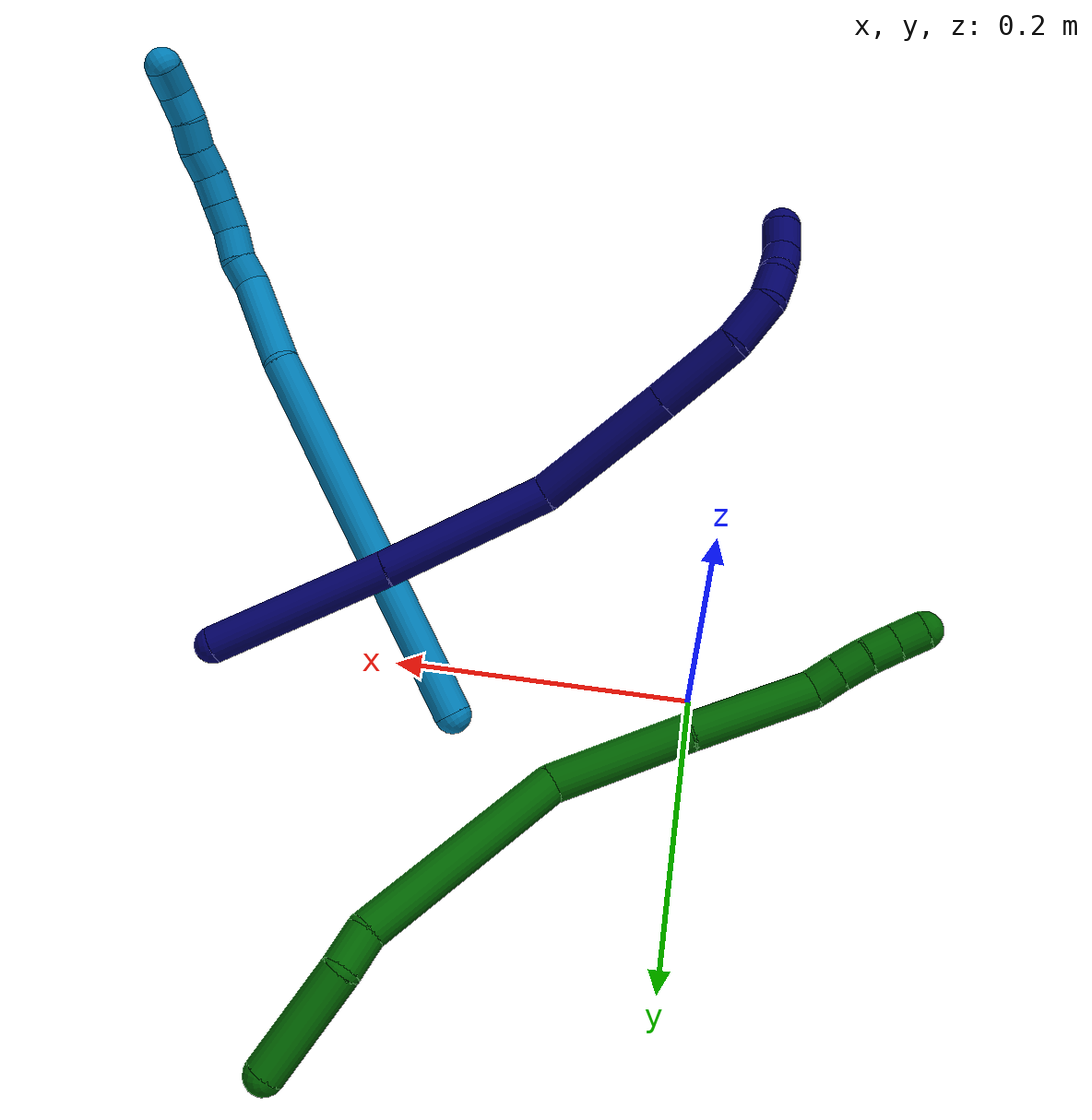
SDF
<sdf version="1.7">
 <world name="default">
  <model name="6">
   <static>0</static>
   <link name="6">
    <collision name="collision-cylinder-e_1_1_4">
     <pose>-0.020432 -0.028267 0.007934 1.29716 -0.608004 -0.466915</pose>
     <geometry><cylinder><radius>0.0125</radius><length>0.071538</length></cylinder></geometry>
     <surface>
      <friction><ode><mu>1.16</mu><mu2>1.16</mu2><slip1>0</slip1><slip2>0</slip2></ode></friction>
      <contact><ode><kp>1e+06</kp><kd>1</kd><max_vel>0</max_vel><min_depth>0.001</min_depth></ode></contact>
     </surface>
    </collision>
    <visual name="visual-cylinder-e_1_1_4">
     <pose>-0.020432 -0.028267 0.007934 1.29716 -0.608004 -0.466915</pose>
     <geometry><cylinder><radius>0.0125</radius><length>0.071538</length></cylinder></geometry>
     <material><ambient>0 0.392157 0.003922 1</ambient></material>
    </visual>
    <collision name="collision-cylinder-e_2_4_5">
     <pose>-0.049795 -0.065214 0.014161 1.76488 -0.79008 -0.938298</pose>
     <geometry><cylinder><radius>0.0125</radius><length>0.025142</length></cylinder></geometry>
     <surface>
      <friction><ode><mu>1.16</mu><mu2>1.16</mu2><slip1>0</slip1><slip2>0</slip2></ode></friction>
      <contact><ode><kp>1e+06</kp><kd>1</kd><max_vel>0</max_vel><min_depth>0.001</min_depth></ode></contact>
     </surface>
    </collision>
    <visual name="visual-cylinder-e_2_4_5">
     <pose>-0.049795 -0.065214 0.014161 1.76488 -0.79008 -0.938298</pose>
     <geometry><cylinder><radius>0.0125</radius><length>0.025142</length></cylinder></geometry>
     <material><ambient>0 0.392157 0.003922 1</ambient></material>
    </visual>
    <collision name="collision-cylinder-e_3_5_6">
     <pose>-0.12336 -0.107113 0.011981 1.58506 -1.09603 -1.10875</pose>
     <geometry><cylinder><radius>0.0125</radius><length>0.145345</length></cylinder></geometry>
     <surface>
      <friction><ode><mu>1.16</mu><mu2>1.16</mu2><slip1>0</slip1><slip2>0</slip2></ode></friction>
      <contact><ode><kp>1e+06</kp><kd>1</kd><max_vel>0</max_vel><min_depth>0.001</min_depth></ode></contact>
     </surface>
    </collision>
    <visual name="visual-cylinder-e_3_5_6">
     <pose>-0.12336 -0.107113 0.011981 1.58506 -1.09603 -1.10875</pose>
     <geometry><cylinder><radius>0.0125</radius><length>0.145345</length></cylinder></geometry>
     <material><ambient>0 0.392157 0.003922 1</ambient></material>
    </visual>
    <collision name="collision-cylinder-e_4_6_7">
     <pose>-0.226802 -0.154973 0.030798 0.649278 -1.01287 -0.369105</pose>
     <geometry><cylinder><radius>0.0125</radius><length>0.091488</length></cylinder></geometry>
     <surface>
      <friction><ode><mu>1.16</mu><mu2>1.16</mu2><slip1>0</slip1><slip2>0</slip2></ode></friction>
      <contact><ode><kp>1e+06</kp><kd>1</kd><max_vel>0</max_vel><min_depth>0.001</min_depth></ode></contact>
     </surface>
    </collision>
    <visual name="visual-cylinder-e_4_6_7">
     <pose>-0.226802 -0.154973 0.030798 0.649278 -1.01287 -0.369105</pose>
     <geometry><cylinder><radius>0.0125</radius><length>0.091488</length></cylinder></geometry>
     <material><ambient>0 0.392157 0.003922 1</ambient></material>
    </visual>
    <collision name="collision-cylinder-e_5_7_8">
     <pose>-0.304508 -0.180791 0.06354 0.693229 -1.1483 -0.459036</pose>
     <geometry><cylinder><radius>0.0125</radius><length>0.085299</length></cylinder></geometry>
     <surface>
      <friction><ode><mu>1.16</mu><mu2>1.16</mu2><slip1>0</slip1><slip2>0</slip2></ode></friction>
      <contact><ode><kp>1e+06</kp><kd>1</kd><max_vel>0</max_vel><min_depth>0.001</min_depth></ode></contact>
     </surface>
    </collision>
    <visual name="visual-cylinder-e_5_7_8">
     <pose>-0.304508 -0.180791 0.06354 0.693229 -1.1483 -0.459036</pose>
     <geometry><cylinder><radius>0.0125</radius><length>0.085299</length></cylinder></geometry>
     <material><ambient>0 0.392157 0.003922 1</ambient></material>
    </visual>
    <collision name="collision-cylinder-e_6_8_9">
     <pose>-0.350672 -0.197329 0.081375 0.88553 -0.809271 -0.400689</pose>
     <geometry><cylinder><radius>0.0125</radius><length>0.020073</length></cylinder></geometry>
     <surface>
      <friction><ode><mu>1.16</mu><mu2>1.16</mu2><slip1>0</slip1><slip2>0</slip2></ode></friction>
      <contact><ode><kp>1e+06</kp><kd>1</kd><max_vel>0</max_vel><min_depth>0.001</min_depth></ode></contact>
     </surface>
    </collision>
    <visual name="visual-cylinder-e_6_8_9">
     <pose>-0.350672 -0.197329 0.081375 0.88553 -0.809271 -0.400689</pose>
     <geometry><cylinder><radius>0.0125</radius><length>0.020073</length></cylinder></geometry>
     <material><ambient>0 0.392157 0.003922 1</ambient></material>
    </visual>
    <collision name="collision-cylinder-e_7_9_10">
     <pose>-0.365682 -0.207933 0.090566 0.828597 -0.827974 -0.381731</pose>
     <geometry><cylinder><radius>0.0125</radius><length>0.021034</length></cylinder></geometry>
     <surface>
      <friction><ode><mu>1.16</mu><mu2>1.16</mu2><slip1>0</slip1><slip2>0</slip2></ode></friction>
      <contact><ode><kp>1e+06</kp><kd>1</kd><max_vel>0</max_vel><min_depth>0.001</min_depth></ode></contact>
     </surface>
    </collision>
    <visual name="visual-cylinder-e_7_9_10">
     <pose>-0.365682 -0.207933 0.090566 0.828597 -0.827974 -0.381731</pose>
     <geometry><cylinder><radius>0.0125</radius><length>0.021034</length></cylinder></geometry>
     <material><ambient>0 0.392157 0.003922 1</ambient></material>
    </visual>
    <collision name="collision-cylinder-e_8_10_11">
     <pose>-0.381571 -0.217164 0.099647 0.750916 -0.948148 -0.399101</pose>
     <geometry><cylinder><radius>0.0125</radius><length>0.020046</length></cylinder></geometry>
     <surface>
      <friction><ode><mu>1.16</mu><mu2>1.16</mu2><slip1>0</slip1><slip2>0</slip2></ode></friction>
      <contact><ode><kp>1e+06</kp><kd>1</kd><max_vel>0</max_vel><min_depth>0.001</min_depth></ode></contact>
     </surface>
    </collision>
    <visual name="visual-cylinder-e_8_10_11">
     <pose>-0.381571 -0.217164 0.099647 0.750916 -0.948148 -0.399101</pose>
     <geometry><cylinder><radius>0.0125</radius><length>0.020046</length></cylinder></geometry>
     <material><ambient>0 0.392157 0.003922 1</ambient></material>
    </visual>
    <collision name="collision-cylinder-e_9_11_2">
     <pose>-0.397596 -0.225138 0.108645 0.70081 -0.905786 -0.352032</pose>
     <geometry><cylinder><radius>0.0125</radius><length>0.020035</length></cylinder></geometry>
     <surface>
      <friction><ode><mu>1.16</mu><mu2>1.16</mu2><slip1>0</slip1><slip2>0</slip2></ode></friction>
      <contact><ode><kp>1e+06</kp><kd>1</kd><max_vel>0</max_vel><min_depth>0.001</min_depth></ode></contact>
     </surface>
    </collision>
    <visual name="visual-cylinder-e_9_11_2">
     <pose>-0.397596 -0.225138 0.108645 0.70081 -0.905786 -0.352032</pose>
     <geometry><cylinder><radius>0.0125</radius><length>0.020035</length></cylinder></geometry>
     <material><ambient>0 0.392157 0.003922 1</ambient></material>
    </visual>
    <collision name="collision-sphere-2">
     <pose>-0.405479 -0.229124 0.11337 0 -0 0</pose>
     <geometry><sphere><radius>0.0125</radius></sphere></geometry>
     <surface>
      <friction><ode><mu>1.16</mu><mu2>1.16</mu2><slip1>0</slip1><slip2>0</slip2></ode></friction>
      <contact><ode><kp>1e+06</kp><kd>1</kd><max_vel>0</max_vel><min_depth>0.001</min_depth></ode></contact>
     </surface>
    </collision>
    <visual name="visual-sphere-2">
     <pose>-0.405479 -0.229124 0.11337 0 -0 0</pose>
     <geometry><sphere><radius>0.0125</radius></sphere></geometry>
     <material><ambient>0 0.392157 0.003922 1</ambient></material>
    </visual>
    <collision name="collision-sphere-11">
     <pose>-0.389713 -0.221152 0.10392 0 -0 0</pose>
     <geometry><sphere><radius>0.0125</radius></sphere></geometry>
     <surface>
      <friction><ode><mu>1.16</mu><mu2>1.16</mu2><slip1>0</slip1><slip2>0</slip2></ode></friction>
      <contact><ode><kp>1e+06</kp><kd>1</kd><max_vel>0</max_vel><min_depth>0.001</min_depth></ode></contact>
     </surface>
    </collision>
    <visual name="visual-sphere-11">
     <pose>-0.389713 -0.221152 0.10392 0 -0 0</pose>
     <geometry><sphere><radius>0.0125</radius></sphere></geometry>
     <material><ambient>0 0.392157 0.003922 1</ambient></material>
    </visual>
    <collision name="collision-sphere-10">
     <pose>-0.373429 -0.213175 0.095374 0 -0 0</pose>
     <geometry><sphere><radius>0.0125</radius></sphere></geometry>
     <surface>
      <friction><ode><mu>1.16</mu><mu2>1.16</mu2><slip1>0</slip1><slip2>0</slip2></ode></friction>
      <contact><ode><kp>1e+06</kp><kd>1</kd><max_vel>0</max_vel><min_depth>0.001</min_depth></ode></contact>
     </surface>
    </collision>
    <visual name="visual-sphere-10">
     <pose>-0.373429 -0.213175 0.095374 0 -0 0</pose>
     <geometry><sphere><radius>0.0125</radius></sphere></geometry>
     <material><ambient>0 0.392157 0.003922 1</ambient></material>
    </visual>
    <collision name="collision-sphere-9">
     <pose>-0.357936 -0.202691 0.085758 0 -0 0</pose>
     <geometry><sphere><radius>0.0125</radius></sphere></geometry>
     <surface>
      <friction><ode><mu>1.16</mu><mu2>1.16</mu2><slip1>0</slip1><slip2>0</slip2></ode></friction>
      <contact><ode><kp>1e+06</kp><kd>1</kd><max_vel>0</max_vel><min_depth>0.001</min_depth></ode></contact>
     </surface>
    </collision>
    <visual name="visual-sphere-9">
     <pose>-0.357936 -0.202691 0.085758 0 -0 0</pose>
     <geometry><sphere><radius>0.0125</radius></sphere></geometry>
     <material><ambient>0 0.392157 0.003922 1</ambient></material>
    </visual>
    <collision name="collision-sphere-4">
     <pose>-0.040865 -0.056533 0.015868 0 -0 0</pose>
     <geometry><sphere><radius>0.0125</radius></sphere></geometry>
     <surface>
      <friction><ode><mu>1.16</mu><mu2>1.16</mu2><slip1>0</slip1><slip2>0</slip2></ode></friction>
      <contact><ode><kp>1e+06</kp><kd>1</kd><max_vel>0</max_vel><min_depth>0.001</min_depth></ode></contact>
     </surface>
    </collision>
    <visual name="visual-sphere-4">
     <pose>-0.040865 -0.056533 0.015868 0 -0 0</pose>
     <geometry><sphere><radius>0.0125</radius></sphere></geometry>
     <material><ambient>0 0.392157 0.003922 1</ambient></material>
    </visual>
    <collision name="collision-sphere-1">
     <geometry><sphere><radius>0.0125</radius></sphere></geometry>
     <surface>
      <friction><ode><mu>1.16</mu><mu2>1.16</mu2><slip1>0</slip1><slip2>0</slip2></ode></friction>
      <contact><ode><kp>1e+06</kp><kd>1</kd><max_vel>0</max_vel><min_depth>0.001</min_depth></ode></contact>
     </surface>
    </collision>
    <visual name="visual-sphere-1">
     <geometry><sphere><radius>0.0125</radius></sphere></geometry>
     <material><ambient>0 0.392157 0.003922 1</ambient></material>
    </visual>
    <collision name="collision-sphere-8">
     <pose>-0.343408 -0.191967 0.076992 0 -0 0</pose>
     <geometry><sphere><radius>0.0125</radius></sphere></geometry>
     <surface>
      <friction><ode><mu>1.16</mu><mu2>1.16</mu2><slip1>0</slip1><slip2>0</slip2></ode></friction>
      <contact><ode><kp>1e+06</kp><kd>1</kd><max_vel>0</max_vel><min_depth>0.001</min_depth></ode></contact>
     </surface>
    </collision>
    <visual name="visual-sphere-8">
     <pose>-0.343408 -0.191967 0.076992 0 -0 0</pose>
     <geometry><sphere><radius>0.0125</radius></sphere></geometry>
     <material><ambient>0 0.392157 0.003922 1</ambient></material>
    </visual>
    <collision name="collision-sphere-5">
     <pose>-0.058726 -0.073895 0.012455 0 -0 0</pose>
     <geometry><sphere><radius>0.0125</radius></sphere></geometry>
     <surface>
      <friction><ode><mu>1.16</mu><mu2>1.16</mu2><slip1>0</slip1><slip2>0</slip2></ode></friction>
      <contact><ode><kp>1e+06</kp><kd>1</kd><max_vel>0</max_vel><min_depth>0.001</min_depth></ode></contact>
     </surface>
    </collision>
    <visual name="visual-sphere-5">
     <pose>-0.058726 -0.073895 0.012455 0 -0 0</pose>
     <geometry><sphere><radius>0.0125</radius></sphere></geometry>
     <material><ambient>0 0.392157 0.003922 1</ambient></material>
    </visual>
    <collision name="collision-sphere-6">
     <pose>-0.187995 -0.140331 0.011508 0 -0 0</pose>
     <geometry><sphere><radius>0.0125</radius></sphere></geometry>
     <surface>
      <friction><ode><mu>1.16</mu><mu2>1.16</mu2><slip1>0</slip1><slip2>0</slip2></ode></friction>
      <contact><ode><kp>1e+06</kp><kd>1</kd><max_vel>0</max_vel><min_depth>0.001</min_depth></ode></contact>
     </surface>
    </collision>
    <visual name="visual-sphere-6">
     <pose>-0.187995 -0.140331 0.011508 0 -0 0</pose>
     <geometry><sphere><radius>0.0125</radius></sphere></geometry>
     <material><ambient>0 0.392157 0.003922 1</ambient></material>
    </visual>
    <collision name="collision-sphere-7">
     <pose>-0.265609 -0.169616 0.050089 0 -0 0</pose>
     <geometry><sphere><radius>0.0125</radius></sphere></geometry>
     <surface>
      <friction><ode><mu>1.16</mu><mu2>1.16</mu2><slip1>0</slip1><slip2>0</slip2></ode></friction>
      <contact><ode><kp>1e+06</kp><kd>1</kd><max_vel>0</max_vel><min_depth>0.001</min_depth></ode></contact>
     </surface>
    </collision>
    <visual name="visual-sphere-7">
     <pose>-0.265609 -0.169616 0.050089 0 -0 0</pose>
     <geometry><sphere><radius>0.0125</radius></sphere></geometry>
     <material><ambient>0 0.392157 0.003922 1</ambient></material>
    </visual>
    <inertial>
     <pose>-0.195426 -0.132056 0.03723 0 -0 0</pose>
     <mass>0.5</mass>
     <inertia>
      <ixx>-4.1e-05</ixx>
      <ixy>0</ixy>
      <ixz>0</ixz>
      <iyy>0.000181</iyy>
      <iyz>0</iyz>
      <izz>0.00056</izz>
     </inertia>
    </inertial>
   </link>
   <pose>0.214643 0.288185 0.037434 -0.772942 -0.446519 0.552736</pose>
  </model>
  <model name="7">
   <static>0</static>
   <link name="7">
    <collision name="collision-cylinder-e_1_1_4">
     <pose>-0.010128 0.004068 -0.061779 -3.07585 -0.162156 2.37247</pose>
     <geometry><cylinder><radius>0.0125</radius><length>0.125471</length></cylinder></geometry>
     <surface>
      <friction><ode><mu>1.16</mu><mu2>1.16</mu2><slip1>0</slip1><slip2>0</slip2></ode></friction>
      <contact><ode><kp>1e+06</kp><kd>1</kd><max_vel>0</max_vel><min_depth>0.001</min_depth></ode></contact>
     </surface>
    </collision>
    <visual name="visual-cylinder-e_1_1_4">
     <pose>-0.010128 0.004068 -0.061779 -3.07585 -0.162156 2.37247</pose>
     <geometry><cylinder><radius>0.0125</radius><length>0.125471</length></cylinder></geometry>
     <material><ambient>0.003922 0 0.403922 1</ambient></material>
    </visual>
    <collision name="collision-cylinder-e_2_4_5">
     <pose>-0.030803 0.009887 -0.180503 -3.11084 -0.183037 2.80954</pose>
     <geometry><cylinder><radius>0.0125</radius><length>0.11588</length></cylinder></geometry>
     <surface>
      <friction><ode><mu>1.16</mu><mu2>1.16</mu2><slip1>0</slip1><slip2>0</slip2></ode></friction>
      <contact><ode><kp>1e+06</kp><kd>1</kd><max_vel>0</max_vel><min_depth>0.001</min_depth></ode></contact>
     </surface>
    </collision>
    <visual name="visual-cylinder-e_2_4_5">
     <pose>-0.030803 0.009887 -0.180503 -3.11084 -0.183037 2.80954</pose>
     <geometry><cylinder><radius>0.0125</radius><length>0.11588</length></cylinder></geometry>
     <material><ambient>0.003922 0 0.403922 1</ambient></material>
    </visual>
    <collision name="collision-cylinder-e_3_5_6">
     <pose>-0.062414 0.020755 -0.280589 -2.93335 -0.445678 2.27739</pose>
     <geometry><cylinder><radius>0.0125</radius><length>0.097734</length></cylinder></geometry>
     <surface>
      <friction><ode><mu>1.16</mu><mu2>1.16</mu2><slip1>0</slip1><slip2>0</slip2></ode></friction>
      <contact><ode><kp>1e+06</kp><kd>1</kd><max_vel>0</max_vel><min_depth>0.001</min_depth></ode></contact>
     </surface>
    </collision>
    <visual name="visual-cylinder-e_3_5_6">
     <pose>-0.062414 0.020755 -0.280589 -2.93335 -0.445678 2.27739</pose>
     <geometry><cylinder><radius>0.0125</radius><length>0.097734</length></cylinder></geometry>
     <material><ambient>0.003922 0 0.403922 1</ambient></material>
    </visual>
    <collision name="collision-cylinder-e_4_6_7">
     <pose>-0.096511 0.035507 -0.349216 -2.92396 -0.463062 2.27373</pose>
     <geometry><cylinder><radius>0.0125</radius><length>0.058346</length></cylinder></geometry>
     <surface>
      <friction><ode><mu>1.16</mu><mu2>1.16</mu2><slip1>0</slip1><slip2>0</slip2></ode></friction>
      <contact><ode><kp>1e+06</kp><kd>1</kd><max_vel>0</max_vel><min_depth>0.001</min_depth></ode></contact>
     </surface>
    </collision>
    <visual name="visual-cylinder-e_4_6_7">
     <pose>-0.096511 0.035507 -0.349216 -2.92396 -0.463062 2.27373</pose>
     <geometry><cylinder><radius>0.0125</radius><length>0.058346</length></cylinder></geometry>
     <material><ambient>0.003922 0 0.403922 1</ambient></material>
    </visual>
    <collision name="collision-cylinder-e_5_7_8">
     <pose>-0.11912 0.039132 -0.38852 2.99709 -0.601197 -2.68284</pose>
     <geometry><cylinder><radius>0.0125</radius><length>0.033869</length></cylinder></geometry>
     <surface>
      <friction><ode><mu>1.16</mu><mu2>1.16</mu2><slip1>0</slip1><slip2>0</slip2></ode></friction>
      <contact><ode><kp>1e+06</kp><kd>1</kd><max_vel>0</max_vel><min_depth>0.001</min_depth></ode></contact>
     </surface>
    </collision>
    <visual name="visual-cylinder-e_5_7_8">
     <pose>-0.11912 0.039132 -0.38852 2.99709 -0.601197 -2.68284</pose>
     <geometry><cylinder><radius>0.0125</radius><length>0.033869</length></cylinder></geometry>
     <material><ambient>0.003922 0 0.403922 1</ambient></material>
    </visual>
    <collision name="collision-cylinder-e_6_8_9">
     <pose>-0.135122 0.032141 -0.408242 2.44075 -0.693845 -1.55991</pose>
     <geometry><cylinder><radius>0.0125</radius><length>0.020088</length></cylinder></geometry>
     <surface>
      <friction><ode><mu>1.16</mu><mu2>1.16</mu2><slip1>0</slip1><slip2>0</slip2></ode></friction>
      <contact><ode><kp>1e+06</kp><kd>1</kd><max_vel>0</max_vel><min_depth>0.001</min_depth></ode></contact>
     </surface>
    </collision>
    <visual name="visual-cylinder-e_6_8_9">
     <pose>-0.135122 0.032141 -0.408242 2.44075 -0.693845 -1.55991</pose>
     <geometry><cylinder><radius>0.0125</radius><length>0.020088</length></cylinder></geometry>
     <material><ambient>0.003922 0 0.403922 1</ambient></material>
    </visual>
    <collision name="collision-cylinder-e_7_9_10">
     <pose>-0.145756 0.016051 -0.419561 2.02448 -0.328277 -0.51815</pose>
     <geometry><cylinder><radius>0.0125</radius><length>0.026116</length></cylinder></geometry>
     <surface>
      <friction><ode><mu>1.16</mu><mu2>1.16</mu2><slip1>0</slip1><slip2>0</slip2></ode></friction>
      <contact><ode><kp>1e+06</kp><kd>1</kd><max_vel>0</max_vel><min_depth>0.001</min_depth></ode></contact>
     </surface>
    </collision>
    <visual name="visual-cylinder-e_7_9_10">
     <pose>-0.145756 0.016051 -0.419561 2.02448 -0.328277 -0.51815</pose>
     <geometry><cylinder><radius>0.0125</radius><length>0.026116</length></cylinder></geometry>
     <material><ambient>0.003922 0 0.403922 1</ambient></material>
    </visual>
    <collision name="collision-cylinder-e_8_10_2">
     <pose>-0.15815 -0.001877 -0.428588 2.05775 -0.814959 -1.24403</pose>
     <geometry><cylinder><radius>0.0125</radius><length>0.022495</length></cylinder></geometry>
     <surface>
      <friction><ode><mu>1.16</mu><mu2>1.16</mu2><slip1>0</slip1><slip2>0</slip2></ode></friction>
      <contact><ode><kp>1e+06</kp><kd>1</kd><max_vel>0</max_vel><min_depth>0.001</min_depth></ode></contact>
     </surface>
    </collision>
    <visual name="visual-cylinder-e_8_10_2">
     <pose>-0.15815 -0.001877 -0.428588 2.05775 -0.814959 -1.24403</pose>
     <geometry><cylinder><radius>0.0125</radius><length>0.022495</length></cylinder></geometry>
     <material><ambient>0.003922 0 0.403922 1</ambient></material>
    </visual>
    <collision name="collision-sphere-2">
     <pose>-0.166335 -0.008695 -0.432198 0 -0 0</pose>
     <geometry><sphere><radius>0.0125</radius></sphere></geometry>
     <surface>
      <friction><ode><mu>1.16</mu><mu2>1.16</mu2><slip1>0</slip1><slip2>0</slip2></ode></friction>
      <contact><ode><kp>1e+06</kp><kd>1</kd><max_vel>0</max_vel><min_depth>0.001</min_depth></ode></contact>
     </surface>
    </collision>
    <visual name="visual-sphere-2">
     <pose>-0.166335 -0.008695 -0.432198 0 -0 0</pose>
     <geometry><sphere><radius>0.0125</radius></sphere></geometry>
     <material><ambient>0.003922 0 0.403922 1</ambient></material>
    </visual>
    <collision name="collision-sphere-10">
     <pose>-0.149966 0.004941 -0.424978 0 -0 0</pose>
     <geometry><sphere><radius>0.0125</radius></sphere></geometry>
     <surface>
      <friction><ode><mu>1.16</mu><mu2>1.16</mu2><slip1>0</slip1><slip2>0</slip2></ode></friction>
      <contact><ode><kp>1e+06</kp><kd>1</kd><max_vel>0</max_vel><min_depth>0.001</min_depth></ode></contact>
     </surface>
    </collision>
    <visual name="visual-sphere-10">
     <pose>-0.149966 0.004941 -0.424978 0 -0 0</pose>
     <geometry><sphere><radius>0.0125</radius></sphere></geometry>
     <material><ambient>0.003922 0 0.403922 1</ambient></material>
    </visual>
    <collision name="collision-sphere-9">
     <pose>-0.141546 0.027162 -0.414144 0 -0 0</pose>
     <geometry><sphere><radius>0.0125</radius></sphere></geometry>
     <surface>
      <friction><ode><mu>1.16</mu><mu2>1.16</mu2><slip1>0</slip1><slip2>0</slip2></ode></friction>
      <contact><ode><kp>1e+06</kp><kd>1</kd><max_vel>0</max_vel><min_depth>0.001</min_depth></ode></contact>
     </surface>
    </collision>
    <visual name="visual-sphere-9">
     <pose>-0.141546 0.027162 -0.414144 0 -0 0</pose>
     <geometry><sphere><radius>0.0125</radius></sphere></geometry>
     <material><ambient>0.003922 0 0.403922 1</ambient></material>
    </visual>
    <collision name="collision-sphere-4">
     <pose>-0.020257 0.008135 -0.123558 0 -0 0</pose>
     <geometry><sphere><radius>0.0125</radius></sphere></geometry>
     <surface>
      <friction><ode><mu>1.16</mu><mu2>1.16</mu2><slip1>0</slip1><slip2>0</slip2></ode></friction>
      <contact><ode><kp>1e+06</kp><kd>1</kd><max_vel>0</max_vel><min_depth>0.001</min_depth></ode></contact>
     </surface>
    </collision>
    <visual name="visual-sphere-4">
     <pose>-0.020257 0.008135 -0.123558 0 -0 0</pose>
     <geometry><sphere><radius>0.0125</radius></sphere></geometry>
     <material><ambient>0.003922 0 0.403922 1</ambient></material>
    </visual>
    <collision name="collision-sphere-1">
     <geometry><sphere><radius>0.0125</radius></sphere></geometry>
     <surface>
      <friction><ode><mu>1.16</mu><mu2>1.16</mu2><slip1>0</slip1><slip2>0</slip2></ode></friction>
      <contact><ode><kp>1e+06</kp><kd>1</kd><max_vel>0</max_vel><min_depth>0.001</min_depth></ode></contact>
     </surface>
    </collision>
    <visual name="visual-sphere-1">
     <geometry><sphere><radius>0.0125</radius></sphere></geometry>
     <material><ambient>0.003922 0 0.403922 1</ambient></material>
    </visual>
    <collision name="collision-sphere-8">
     <pose>-0.128699 0.037121 -0.40234 0 -0 0</pose>
     <geometry><sphere><radius>0.0125</radius></sphere></geometry>
     <surface>
      <friction><ode><mu>1.16</mu><mu2>1.16</mu2><slip1>0</slip1><slip2>0</slip2></ode></friction>
      <contact><ode><kp>1e+06</kp><kd>1</kd><max_vel>0</max_vel><min_depth>0.001</min_depth></ode></contact>
     </surface>
    </collision>
    <visual name="visual-sphere-8">
     <pose>-0.128699 0.037121 -0.40234 0 -0 0</pose>
     <geometry><sphere><radius>0.0125</radius></sphere></geometry>
     <material><ambient>0.003922 0 0.403922 1</ambient></material>
    </visual>
    <collision name="collision-sphere-5">
     <pose>-0.041349 0.011639 -0.237449 0 -0 0</pose>
     <geometry><sphere><radius>0.0125</radius></sphere></geometry>
     <surface>
      <friction><ode><mu>1.16</mu><mu2>1.16</mu2><slip1>0</slip1><slip2>0</slip2></ode></friction>
      <contact><ode><kp>1e+06</kp><kd>1</kd><max_vel>0</max_vel><min_depth>0.001</min_depth></ode></contact>
     </surface>
    </collision>
    <visual name="visual-sphere-5">
     <pose>-0.041349 0.011639 -0.237449 0 -0 0</pose>
     <geometry><sphere><radius>0.0125</radius></sphere></geometry>
     <material><ambient>0.003922 0 0.403922 1</ambient></material>
    </visual>
    <collision name="collision-sphere-6">
     <pose>-0.083479 0.029871 -0.32373 0 -0 0</pose>
     <geometry><sphere><radius>0.0125</radius></sphere></geometry>
     <surface>
      <friction><ode><mu>1.16</mu><mu2>1.16</mu2><slip1>0</slip1><slip2>0</slip2></ode></friction>
      <contact><ode><kp>1e+06</kp><kd>1</kd><max_vel>0</max_vel><min_depth>0.001</min_depth></ode></contact>
     </surface>
    </collision>
    <visual name="visual-sphere-6">
     <pose>-0.083479 0.029871 -0.32373 0 -0 0</pose>
     <geometry><sphere><radius>0.0125</radius></sphere></geometry>
     <material><ambient>0.003922 0 0.403922 1</ambient></material>
    </visual>
    <collision name="collision-sphere-7">
     <pose>-0.109542 0.041143 -0.374701 0 -0 0</pose>
     <geometry><sphere><radius>0.0125</radius></sphere></geometry>
     <surface>
      <friction><ode><mu>1.16</mu><mu2>1.16</mu2><slip1>0</slip1><slip2>0</slip2></ode></friction>
      <contact><ode><kp>1e+06</kp><kd>1</kd><max_vel>0</max_vel><min_depth>0.001</min_depth></ode></contact>
     </surface>
    </collision>
    <visual name="visual-sphere-7">
     <pose>-0.109542 0.041143 -0.374701 0 -0 0</pose>
     <geometry><sphere><radius>0.0125</radius></sphere></geometry>
     <material><ambient>0.003922 0 0.403922 1</ambient></material>
    </visual>
    <inertial>
     <pose>-0.061369 0.016209 -0.23685 0 -0 0</pose>
     <mass>0.5</mass>
     <inertia>
      <ixx>-9.4e-05</ixx>
      <ixy>0</ixy>
      <ixz>0</ixz>
      <iyy>0.000548</iyy>
      <iyz>0</iyz>
      <izz>3.8e-05</izz>
     </inertia>
    </inertial>
   </link>
   <pose>0.315182 0.024763 0.03894 1.7341 0.804033 2.08869</pose>
  </model>
  <model name="9">
   <static>0</static>
   <link name="9">
    <collision name="collision-cylinder-e_1_1_4">
     <pose>0.003148 -0.016057 0.133661 0.11956 0.02338 0.001399</pose>
     <geometry><cylinder><radius>0.0125</radius><length>0.269317</length></cylinder></geometry>
     <surface>
      <friction><ode><mu>1.16</mu><mu2>1.16</mu2><slip1>0</slip1><slip2>0</slip2></ode></friction>
      <contact><ode><kp>1e+06</kp><kd>1</kd><max_vel>0</max_vel><min_depth>0.001</min_depth></ode></contact>
     </surface>
    </collision>
    <visual name="visual-cylinder-e_1_1_4">
     <pose>0.003148 -0.016057 0.133661 0.11956 0.02338 0.001399</pose>
     <geometry><cylinder><radius>0.0125</radius><length>0.269317</length></cylinder></geometry>
     <material><ambient>0 0.490196 0.709804 1</ambient></material>
    </visual>
    <collision name="collision-cylinder-e_2_4_5">
     <pose>0.01592 -0.040237 0.299313 0.248651 0.283706 0.035691</pose>
     <geometry><cylinder><radius>0.0125</radius><length>0.068762</length></cylinder></geometry>
     <surface>
      <friction><ode><mu>1.16</mu><mu2>1.16</mu2><slip1>0</slip1><slip2>0</slip2></ode></friction>
      <contact><ode><kp>1e+06</kp><kd>1</kd><max_vel>0</max_vel><min_depth>0.001</min_depth></ode></contact>
     </surface>
    </collision>
    <visual name="visual-cylinder-e_2_4_5">
     <pose>0.01592 -0.040237 0.299313 0.248651 0.283706 0.035691</pose>
     <geometry><cylinder><radius>0.0125</radius><length>0.068762</length></cylinder></geometry>
     <material><ambient>0 0.490196 0.709804 1</ambient></material>
    </visual>
    <collision name="collision-cylinder-e_3_5_6">
     <pose>0.023744 -0.04854 0.341155 0.01829 -0.180698 -0.001657</pose>
     <geometry><cylinder><radius>0.0125</radius><length>0.02003</length></cylinder></geometry>
     <surface>
      <friction><ode><mu>1.16</mu><mu2>1.16</mu2><slip1>0</slip1><slip2>0</slip2></ode></friction>
      <contact><ode><kp>1e+06</kp><kd>1</kd><max_vel>0</max_vel><min_depth>0.001</min_depth></ode></contact>
     </surface>
    </collision>
    <visual name="visual-cylinder-e_3_5_6">
     <pose>0.023744 -0.04854 0.341155 0.01829 -0.180698 -0.001657</pose>
     <geometry><cylinder><radius>0.0125</radius><length>0.02003</length></cylinder></geometry>
     <material><ambient>0 0.490196 0.709804 1</ambient></material>
    </visual>
    <collision name="collision-cylinder-e_4_6_7">
     <pose>0.020538 -0.052012 0.361225 0.311567 -0.130157 -0.02047</pose>
     <geometry><cylinder><radius>0.0125</radius><length>0.021658</length></cylinder></geometry>
     <surface>
      <friction><ode><mu>1.16</mu><mu2>1.16</mu2><slip1>0</slip1><slip2>0</slip2></ode></friction>
      <contact><ode><kp>1e+06</kp><kd>1</kd><max_vel>0</max_vel><min_depth>0.001</min_depth></ode></contact>
     </surface>
    </collision>
    <visual name="visual-cylinder-e_4_6_7">
     <pose>0.020538 -0.052012 0.361225 0.311567 -0.130157 -0.02047</pose>
     <geometry><cylinder><radius>0.0125</radius><length>0.021658</length></cylinder></geometry>
     <material><ambient>0 0.490196 0.709804 1</ambient></material>
    </visual>
    <collision name="collision-cylinder-e_5_7_8">
     <pose>0.015381 -0.056616 0.38068 0.141239 -0.382449 -0.027386</pose>
     <geometry><cylinder><radius>0.0125</radius><length>0.020107</length></cylinder></geometry>
     <surface>
      <friction><ode><mu>1.16</mu><mu2>1.16</mu2><slip1>0</slip1><slip2>0</slip2></ode></friction>
      <contact><ode><kp>1e+06</kp><kd>1</kd><max_vel>0</max_vel><min_depth>0.001</min_depth></ode></contact>
     </surface>
    </collision>
    <visual name="visual-cylinder-e_5_7_8">
     <pose>0.015381 -0.056616 0.38068 0.141239 -0.382449 -0.027386</pose>
     <geometry><cylinder><radius>0.0125</radius><length>0.020107</length></cylinder></geometry>
     <material><ambient>0 0.490196 0.709804 1</ambient></material>
    </visual>
    <collision name="collision-cylinder-e_6_8_9">
     <pose>0.007919 -0.059394 0.39914 0.157475 -0.378023 -0.030184</pose>
     <geometry><cylinder><radius>0.0125</radius><length>0.020101</length></cylinder></geometry>
     <surface>
      <friction><ode><mu>1.16</mu><mu2>1.16</mu2><slip1>0</slip1><slip2>0</slip2></ode></friction>
      <contact><ode><kp>1e+06</kp><kd>1</kd><max_vel>0</max_vel><min_depth>0.001</min_depth></ode></contact>
     </surface>
    </collision>
    <visual name="visual-cylinder-e_6_8_9">
     <pose>0.007919 -0.059394 0.39914 0.157475 -0.378023 -0.030184</pose>
     <geometry><cylinder><radius>0.0125</radius><length>0.020101</length></cylinder></geometry>
     <material><ambient>0 0.490196 0.709804 1</ambient></material>
    </visual>
    <collision name="collision-cylinder-e_7_9_10">
     <pose>-0.001238 -0.060524 0.416753 -0.039913 -0.575607 0.011817</pose>
     <geometry><cylinder><radius>0.0125</radius><length>0.020015</length></cylinder></geometry>
     <surface>
      <friction><ode><mu>1.16</mu><mu2>1.16</mu2><slip1>0</slip1><slip2>0</slip2></ode></friction>
      <contact><ode><kp>1e+06</kp><kd>1</kd><max_vel>0</max_vel><min_depth>0.001</min_depth></ode></contact>
     </surface>
    </collision>
    <visual name="visual-cylinder-e_7_9_10">
     <pose>-0.001238 -0.060524 0.416753 -0.039913 -0.575607 0.011817</pose>
     <geometry><cylinder><radius>0.0125</radius><length>0.020015</length></cylinder></geometry>
     <material><ambient>0 0.490196 0.709804 1</ambient></material>
    </visual>
    <collision name="collision-cylinder-e_8_10_11">
     <pose>-0.01266 -0.061915 0.432978 0.216838 -0.64002 -0.072112</pose>
     <geometry><cylinder><radius>0.0125</radius><length>0.020008</length></cylinder></geometry>
     <surface>
      <friction><ode><mu>1.16</mu><mu2>1.16</mu2><slip1>0</slip1><slip2>0</slip2></ode></friction>
      <contact><ode><kp>1e+06</kp><kd>1</kd><max_vel>0</max_vel><min_depth>0.001</min_depth></ode></contact>
     </surface>
    </collision>
    <visual name="visual-cylinder-e_8_10_11">
     <pose>-0.01266 -0.061915 0.432978 0.216838 -0.64002 -0.072112</pose>
     <geometry><cylinder><radius>0.0125</radius><length>0.020008</length></cylinder></geometry>
     <material><ambient>0 0.490196 0.709804 1</ambient></material>
    </visual>
    <collision name="collision-cylinder-e_9_11_12">
     <pose>-0.023551 -0.064054 0.449513 0.047313 -0.51397 -0.012436</pose>
     <geometry><cylinder><radius>0.0125</radius><length>0.020001</length></cylinder></geometry>
     <surface>
      <friction><ode><mu>1.16</mu><mu2>1.16</mu2><slip1>0</slip1><slip2>0</slip2></ode></friction>
      <contact><ode><kp>1e+06</kp><kd>1</kd><max_vel>0</max_vel><min_depth>0.001</min_depth></ode></contact>
     </surface>
    </collision>
    <visual name="visual-cylinder-e_9_11_12">
     <pose>-0.023551 -0.064054 0.449513 0.047313 -0.51397 -0.012436</pose>
     <geometry><cylinder><radius>0.0125</radius><length>0.020001</length></cylinder></geometry>
     <material><ambient>0 0.490196 0.709804 1</ambient></material>
    </visual>
    <collision name="collision-cylinder-e_10_12_2">
     <pose>-0.03592 -0.063983 0.464863 -0.072423 -0.8408 0.032388</pose>
     <geometry><cylinder><radius>0.0125</radius><length>0.020001</length></cylinder></geometry>
     <surface>
      <friction><ode><mu>1.16</mu><mu2>1.16</mu2><slip1>0</slip1><slip2>0</slip2></ode></friction>
      <contact><ode><kp>1e+06</kp><kd>1</kd><max_vel>0</max_vel><min_depth>0.001</min_depth></ode></contact>
     </surface>
    </collision>
    <visual name="visual-cylinder-e_10_12_2">
     <pose>-0.03592 -0.063983 0.464863 -0.072423 -0.8408 0.032388</pose>
     <geometry><cylinder><radius>0.0125</radius><length>0.020001</length></cylinder></geometry>
     <material><ambient>0 0.490196 0.709804 1</ambient></material>
    </visual>
    <collision name="collision-sphere-2">
     <pose>-0.043372 -0.0635 0.471514 0 -0 0</pose>
     <geometry><sphere><radius>0.0125</radius></sphere></geometry>
     <surface>
      <friction><ode><mu>1.16</mu><mu2>1.16</mu2><slip1>0</slip1><slip2>0</slip2></ode></friction>
      <contact><ode><kp>1e+06</kp><kd>1</kd><max_vel>0</max_vel><min_depth>0.001</min_depth></ode></contact>
     </surface>
    </collision>
    <visual name="visual-sphere-2">
     <pose>-0.043372 -0.0635 0.471514 0 -0 0</pose>
     <geometry><sphere><radius>0.0125</radius></sphere></geometry>
     <material><ambient>0 0.490196 0.709804 1</ambient></material>
    </visual>
    <collision name="collision-sphere-12">
     <pose>-0.028468 -0.064466 0.458211 0 -0 0</pose>
     <geometry><sphere><radius>0.0125</radius></sphere></geometry>
     <surface>
      <friction><ode><mu>1.16</mu><mu2>1.16</mu2><slip1>0</slip1><slip2>0</slip2></ode></friction>
      <contact><ode><kp>1e+06</kp><kd>1</kd><max_vel>0</max_vel><min_depth>0.001</min_depth></ode></contact>
     </surface>
    </collision>
    <visual name="visual-sphere-12">
     <pose>-0.028468 -0.064466 0.458211 0 -0 0</pose>
     <geometry><sphere><radius>0.0125</radius></sphere></geometry>
     <material><ambient>0 0.490196 0.709804 1</ambient></material>
    </visual>
    <collision name="collision-sphere-11">
     <pose>-0.018634 -0.063642 0.440814 0 -0 0</pose>
     <geometry><sphere><radius>0.0125</radius></sphere></geometry>
     <surface>
      <friction><ode><mu>1.16</mu><mu2>1.16</mu2><slip1>0</slip1><slip2>0</slip2></ode></friction>
      <contact><ode><kp>1e+06</kp><kd>1</kd><max_vel>0</max_vel><min_depth>0.001</min_depth></ode></contact>
     </surface>
    </collision>
    <visual name="visual-sphere-11">
     <pose>-0.018634 -0.063642 0.440814 0 -0 0</pose>
     <geometry><sphere><radius>0.0125</radius></sphere></geometry>
     <material><ambient>0 0.490196 0.709804 1</ambient></material>
    </visual>
    <collision name="collision-sphere-10">
     <pose>-0.006685 -0.060189 0.425141 0 -0 0</pose>
     <geometry><sphere><radius>0.0125</radius></sphere></geometry>
     <surface>
      <friction><ode><mu>1.16</mu><mu2>1.16</mu2><slip1>0</slip1><slip2>0</slip2></ode></friction>
      <contact><ode><kp>1e+06</kp><kd>1</kd><max_vel>0</max_vel><min_depth>0.001</min_depth></ode></contact>
     </surface>
    </collision>
    <visual name="visual-sphere-10">
     <pose>-0.006685 -0.060189 0.425141 0 -0 0</pose>
     <geometry><sphere><radius>0.0125</radius></sphere></geometry>
     <material><ambient>0 0.490196 0.709804 1</ambient></material>
    </visual>
    <collision name="collision-sphere-9">
     <pose>0.00421 -0.060859 0.408365 0 -0 0</pose>
     <geometry><sphere><radius>0.0125</radius></sphere></geometry>
     <surface>
      <friction><ode><mu>1.16</mu><mu2>1.16</mu2><slip1>0</slip1><slip2>0</slip2></ode></friction>
      <contact><ode><kp>1e+06</kp><kd>1</kd><max_vel>0</max_vel><min_depth>0.001</min_depth></ode></contact>
     </surface>
    </collision>
    <visual name="visual-sphere-9">
     <pose>0.00421 -0.060859 0.408365 0 -0 0</pose>
     <geometry><sphere><radius>0.0125</radius></sphere></geometry>
     <material><ambient>0 0.490196 0.709804 1</ambient></material>
    </visual>
    <collision name="collision-sphere-4">
     <pose>0.006296 -0.032114 0.267322 0 -0 0</pose>
     <geometry><sphere><radius>0.0125</radius></sphere></geometry>
     <surface>
      <friction><ode><mu>1.16</mu><mu2>1.16</mu2><slip1>0</slip1><slip2>0</slip2></ode></friction>
      <contact><ode><kp>1e+06</kp><kd>1</kd><max_vel>0</max_vel><min_depth>0.001</min_depth></ode></contact>
     </surface>
    </collision>
    <visual name="visual-sphere-4">
     <pose>0.006296 -0.032114 0.267322 0 -0 0</pose>
     <geometry><sphere><radius>0.0125</radius></sphere></geometry>
     <material><ambient>0 0.490196 0.709804 1</ambient></material>
    </visual>
    <collision name="collision-sphere-1">
     <geometry><sphere><radius>0.0125</radius></sphere></geometry>
     <surface>
      <friction><ode><mu>1.16</mu><mu2>1.16</mu2><slip1>0</slip1><slip2>0</slip2></ode></friction>
      <contact><ode><kp>1e+06</kp><kd>1</kd><max_vel>0</max_vel><min_depth>0.001</min_depth></ode></contact>
     </surface>
    </collision>
    <visual name="visual-sphere-1">
     <geometry><sphere><radius>0.0125</radius></sphere></geometry>
     <material><ambient>0 0.490196 0.709804 1</ambient></material>
    </visual>
    <collision name="collision-sphere-8">
     <pose>0.011629 -0.057929 0.389914 0 -0 0</pose>
     <geometry><sphere><radius>0.0125</radius></sphere></geometry>
     <surface>
      <friction><ode><mu>1.16</mu><mu2>1.16</mu2><slip1>0</slip1><slip2>0</slip2></ode></friction>
      <contact><ode><kp>1e+06</kp><kd>1</kd><max_vel>0</max_vel><min_depth>0.001</min_depth></ode></contact>
     </surface>
    </collision>
    <visual name="visual-sphere-8">
     <pose>0.011629 -0.057929 0.389914 0 -0 0</pose>
     <geometry><sphere><radius>0.0125</radius></sphere></geometry>
     <material><ambient>0 0.490196 0.709804 1</ambient></material>
    </visual>
    <collision name="collision-sphere-5">
     <pose>0.025543 -0.04836 0.331304 0 -0 0</pose>
     <geometry><sphere><radius>0.0125</radius></sphere></geometry>
     <surface>
      <friction><ode><mu>1.16</mu><mu2>1.16</mu2><slip1>0</slip1><slip2>0</slip2></ode></friction>
      <contact><ode><kp>1e+06</kp><kd>1</kd><max_vel>0</max_vel><min_depth>0.001</min_depth></ode></contact>
     </surface>
    </collision>
    <visual name="visual-sphere-5">
     <pose>0.025543 -0.04836 0.331304 0 -0 0</pose>
     <geometry><sphere><radius>0.0125</radius></sphere></geometry>
     <material><ambient>0 0.490196 0.709804 1</ambient></material>
    </visual>
    <collision name="collision-sphere-6">
     <pose>0.021944 -0.04872 0.351005 0 -0 0</pose>
     <geometry><sphere><radius>0.0125</radius></sphere></geometry>
     <surface>
      <friction><ode><mu>1.16</mu><mu2>1.16</mu2><slip1>0</slip1><slip2>0</slip2></ode></friction>
      <contact><ode><kp>1e+06</kp><kd>1</kd><max_vel>0</max_vel><min_depth>0.001</min_depth></ode></contact>
     </surface>
    </collision>
    <visual name="visual-sphere-6">
     <pose>0.021944 -0.04872 0.351005 0 -0 0</pose>
     <geometry><sphere><radius>0.0125</radius></sphere></geometry>
     <material><ambient>0 0.490196 0.709804 1</ambient></material>
    </visual>
    <collision name="collision-sphere-7">
     <pose>0.019133 -0.055303 0.371446 0 -0 0</pose>
     <geometry><sphere><radius>0.0125</radius></sphere></geometry>
     <surface>
      <friction><ode><mu>1.16</mu><mu2>1.16</mu2><slip1>0</slip1><slip2>0</slip2></ode></friction>
      <contact><ode><kp>1e+06</kp><kd>1</kd><max_vel>0</max_vel><min_depth>0.001</min_depth></ode></contact>
     </surface>
    </collision>
    <visual name="visual-sphere-7">
     <pose>0.019133 -0.055303 0.371446 0 -0 0</pose>
     <geometry><sphere><radius>0.0125</radius></sphere></geometry>
     <material><ambient>0 0.490196 0.709804 1</ambient></material>
    </visual>
    <inertial>
     <pose>0.003728 -0.033067 0.244411 0 -0 0</pose>
     <mass>0.5</mass>
     <inertia>
      <ixx>0.001677</ixx>
      <ixy>0</ixy>
      <ixz>0</ixz>
      <iyy>0.001665</iyy>
      <iyz>0</iyz>
      <izz>0.000199</izz>
     </inertia>
    </inertial>
   </link>
   <pose>0.153092 0.038709 0.011497 -0.130668 1.16615 -0.932632</pose>
  </model>
 </world>
</sdf>
